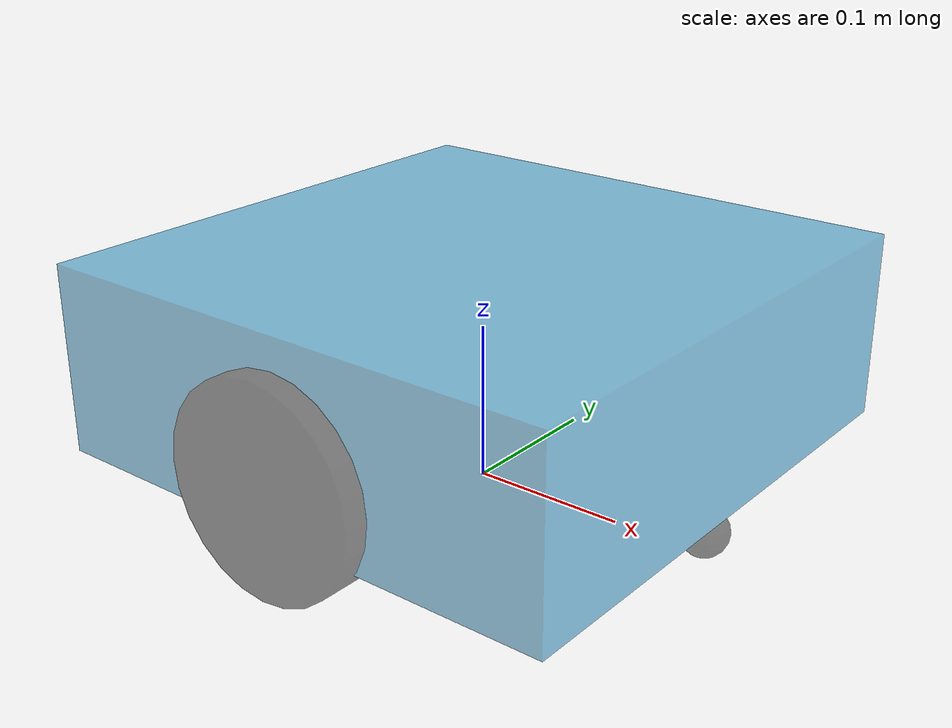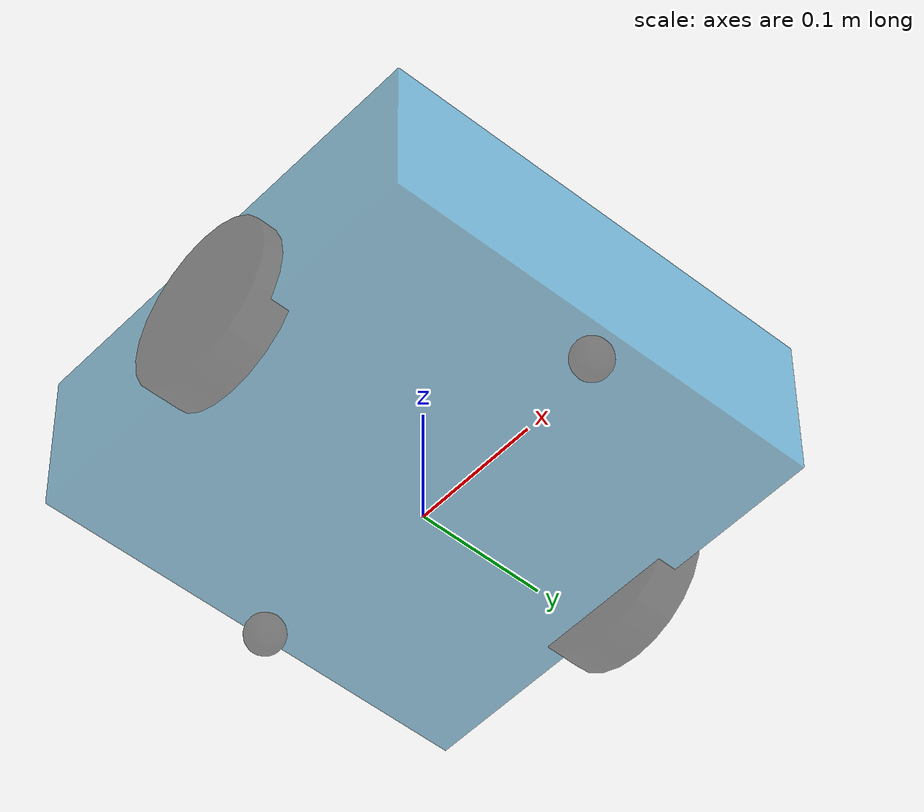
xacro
<robot name="my_base" xmlns:xacro="http://wiki.ros.org/xacro">
<xacro:property name="PI" value="3.141"/>

    <material name="black">
        <color rgba="0.0 0.0 0.0 0.5" />
    </material>

    <xacro:property name="base_footprint_radius" value="0.001" />
    <xacro:property name="base_link_length" value="0.35" />
    <xacro:property name="base_link_width" value="0.35" />
    <xacro:property name="base_link_height" value="0.12" />
    <xacro:property name="base_link_mass" value="2" />

    <xacro:property name="collision" value="0.02" />

    <xacro:property name="earth_space" value="0.03" />

    <link name="base_footprint">
      <visual>
        <geometry>
          <sphere radius="${base_footprint_radius}" />
        </geometry>
      </visual>
    </link>

    <link name="base_link">
      <visual>
        <geometry>
            <box size="${base_link_length} ${base_link_width} ${base_link_height}" />
        </geometry>
        <origin xyz="0 0 0" rpy="0 0 0" />
        <material name="blue">
          <color rgba="0 0.5 0.75 0.5" />
        </material>
      </visual>
      <!-- collision： -->
      <!-- collision visual -->
      <collision>
            <origin xyz="0 0 0" rpy="0 0 0" />
            <geometry>
                 <box size="${base_link_length + collision} ${base_link_width + collision} ${base_link_height}" />
            </geometry>
      </collision>
      <xacro:box_inertial_matrix m="${base_link_mass}" l="${base_link_length}" w="${base_link_width}" h="${base_link_height}" />
    </link>

    <joint name="base_link2base_footprint" type="fixed">
      <parent link="base_footprint" />
      <child link="base_link" />
      <origin xyz="0 0 ${earth_space + base_link_height / 2 }" />
    </joint>

    <xacro:property name="wheel_radius" value="0.065" />
    <xacro:property name="wheel_length" value="0.03" />
    <xacro:property name="wheel_mass" value="0.5" />

    <xacro:macro name="add_wheels" params="name flag_left flag_front">
      <link name="${name}_wheel">
        <visual>
          <geometry>
            <cylinder radius="${wheel_radius}" length="${wheel_length}" />
          </geometry>
          <origin xyz="0.0 0.0 0.0" rpy="${flag_left * PI / 2} ${flag_front * PI / 2} 0.0 "/>
          <material name="black" />
        </visual>

        <collision>
        <origin xyz="0.0 0.0 0.0" rpy="${flag_left * PI / 2} ${flag_front * PI / 2} 0.0 "/>
        <geometry>
            <cylinder radius="${wheel_radius}" length="${wheel_length + collision}" />
        </geometry>
        </collision>
      <xacro:cylinder_inertial_matrix m="${wheel_mass}" r="${wheel_radius}" h="${wheel_length}" />
      </link>

      <joint name="${name}_wheel2base_link" type="continuous">
        <parent link="base_link" />
        <child link="${name}_wheel" />
        <origin xyz="${flag_front * base_link_length / 2 } ${flag_left * base_link_width / 2 } ${-(earth_space + base_link_height / 2 - wheel_radius) }" />
        <axis xyz="0 1 0" />
      </joint>
    </xacro:macro>
     <![CDATA[
    <xacro:add_wheels name="front" flag_left="0" flag_front="1"  />
    <xacro:add_wheels name="back" flag_left="0" flag_front="-1" />
    ]]>
    <xacro:add_wheels name="left" flag_left="1" flag_front="0" />
    <xacro:add_wheels name="right" flag_left="-1" flag_front="0" />

    <xacro:property name="support_wheel_radius" value="0.015" />
    <xacro:property name="support_wheel_mass" value="0.1" />

    <xacro:macro name="add_support_wheel" params="name flag" >
      <link name="${name}_wheel">
        <visual>
            <geometry>
                <sphere radius="${support_wheel_radius}" />
            </geometry>
            <origin xyz="0 0 0" rpy="0 0 0" />
            <material name="black" />
        </visual>
      <collision>
            <geometry>
                <sphere radius="${support_wheel_radius}" />
            </geometry>
            <origin xyz="0 0 0" rpy="0 0 0" />
        </collision>
        <xacro:sphere_inertial_matrix m="${support_wheel_mass}" r="${support_wheel_radius}" />
      </link>

      <joint name="${name}_wheel2base_link" type="continuous">
          <parent link="base_link" />
          <child link="${name}_wheel" />
          <origin xyz="${flag * (base_link_length / 2 - support_wheel_radius)} 0 ${-(base_link_height / 2 + earth_space / 2)}" />
          <axis xyz="1 1 1" />
      </joint>
    </xacro:macro>

    <xacro:add_support_wheel name="front" flag="1" />
    <xacro:add_support_wheel name="back" flag="-1" />

</robot>
